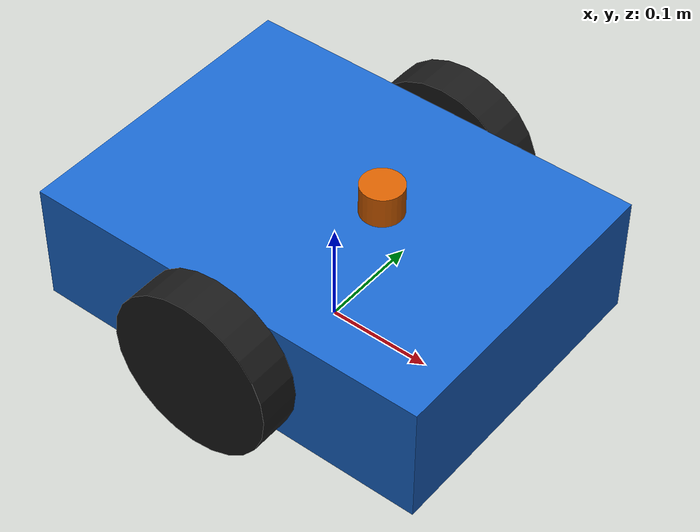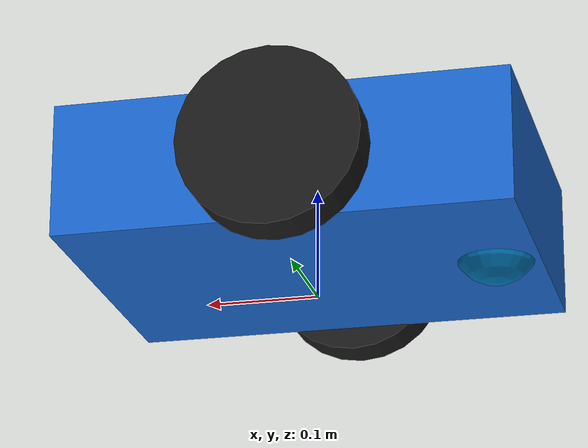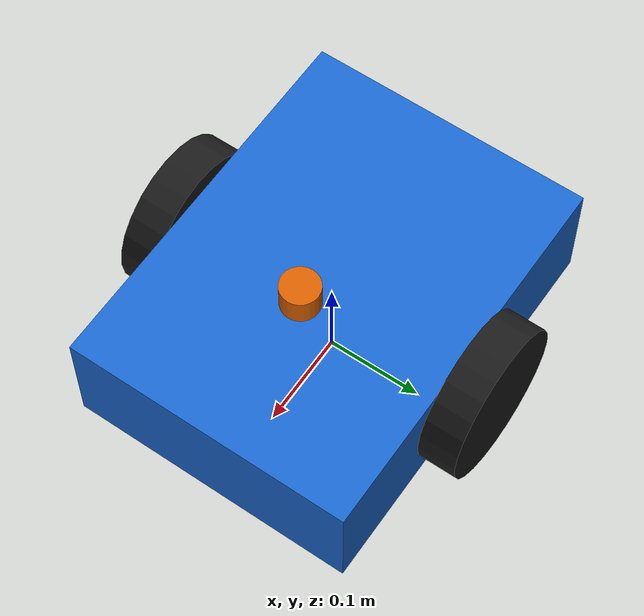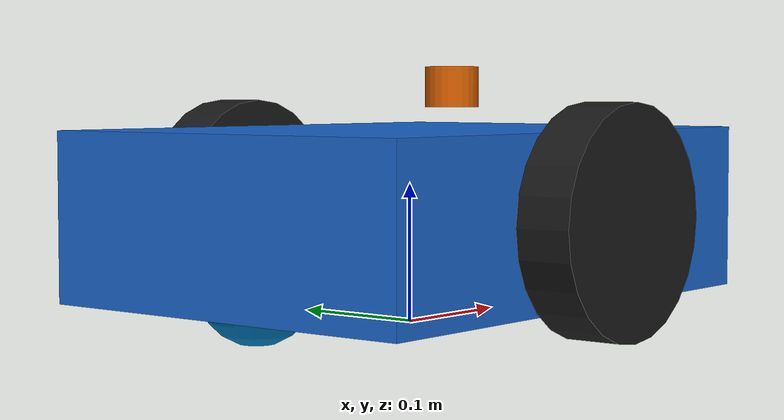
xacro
<?xml version="1.0"?>
<robot xmlns:xacro="http://www.ros.org/wiki/xacro" name="throwbot">
  <xacro:property name="wr" value="0.08"/>
  <xacro:property name="sep" value="0.34"/>

  <link name="base_footprint"/>
  <joint name="footprint_joint" type="fixed">
    <parent link="base_footprint"/><child link="base_link"/>
    <origin xyz="0 0 ${wr}"/>
  </joint>

  <link name="base_link">
    <inertial><mass value="8"/><inertia ixx="0.12" iyy="0.2" izz="0.25" ixy="0" ixz="0" iyz="0"/></inertial>
    <visual><geometry><box size="0.40 0.30 0.12"/></geometry><material name="b"><color rgba="0.1 0.4 0.8 1"/></material></visual>
    <collision><geometry><box size="0.40 0.30 0.12"/></geometry></collision>
  </link>

  <xacro:macro name="wheel" params="name y">
    <link name="${name}_wheel">
      <inertial><mass value="0.6"/><inertia ixx="0.002" iyy="0.002" izz="0.003" ixy="0" ixz="0" iyz="0"/></inertial>
      <visual><origin rpy="1.5708 0 0"/><geometry><cylinder radius="${wr}" length="0.04"/></geometry><material name="k"><color rgba="0.1 0.1 0.1 1"/></material></visual>
      <collision><origin rpy="1.5708 0 0"/><geometry><cylinder radius="${wr}" length="0.04"/></geometry></collision>
    </link>
    <joint name="${name}_wheel_joint" type="continuous">
      <parent link="base_link"/><child link="${name}_wheel"/>
      <origin xyz="0 ${y} 0"/><axis xyz="0 1 0"/>
    </joint>
  </xacro:macro>
  <xacro:wheel name="left" y="${sep/2}"/>
  <xacro:wheel name="right" y="${-sep/2}"/>

  <link name="caster">
    <inertial><mass value="0.2"/><inertia ixx="0.0002" iyy="0.0002" izz="0.0002" ixy="0" ixz="0" iyz="0"/></inertial>
    <collision><geometry><sphere radius="0.04"/></geometry></collision>
    <visual><geometry><sphere radius="0.04"/></geometry></visual>
  </link>
  <joint name="caster_joint" type="fixed">
    <parent link="base_link"/><child link="caster"/><origin xyz="-0.16 0 -0.04"/>
  </joint>
  <gazebo reference="caster">
    <collision><surface><friction><ode><mu>0</mu><mu2>0</mu2></ode></friction></surface></collision>
  </gazebo>

  <!-- Sensor under test. Chosen with xacro args (see sensor_cfg.py / config/sensors.yaml). -->
  <xacro:arg name="sensor_kind" default="scan"/>
  <xacro:arg name="rate" default="10"/>
  <xacro:arg name="noise" default="0.01"/>
  <xacro:arg name="rmin" default="0.12"/>
  <xacro:arg name="rmax" default="8.0"/>
  <xacro:arg name="mx" default="0.05"/>
  <xacro:arg name="mz" default="0.09"/>
  <xacro:arg name="samples" default="360"/>
  <xacro:arg name="amin" default="-3.14159"/>
  <xacro:arg name="amax" default="3.14159"/>
  <xacro:arg name="width" default="320"/>
  <xacro:arg name="height" default="240"/>
  <xacro:arg name="hfov" default="1.5184"/>
  <xacro:property name="kind" value="$(arg sensor_kind)"/>

  <link name="sensor_link">
    <inertial><mass value="0.1"/><inertia ixx="0.0001" iyy="0.0001" izz="0.0001" ixy="0" ixz="0" iyz="0"/></inertial>
    <visual><geometry><cylinder radius="0.02" length="0.03"/></geometry></visual>
  </link>
  <joint name="sensor_joint" type="fixed">
    <parent link="base_link"/><child link="sensor_link"/><origin xyz="$(arg mx) 0 $(arg mz)"/>
  </joint>

  <xacro:if value="${kind in ('scan', 'range')}">
  <gazebo reference="sensor_link">
    <sensor name="range_sensor" type="gpu_lidar">
      <topic>sensor/scan</topic>
      <ignition_frame_id>sensor_link</ignition_frame_id>
      <update_rate>$(arg rate)</update_rate>
      <always_on>true</always_on>
      <visualize>false</visualize>
      <lidar>
        <scan>
          <horizontal><samples>$(arg samples)</samples><resolution>1</resolution><min_angle>$(arg amin)</min_angle><max_angle>$(arg amax)</max_angle></horizontal>
          <vertical><samples>1</samples><resolution>1</resolution><min_angle>0</min_angle><max_angle>0</max_angle></vertical>
        </scan>
        <range><min>$(arg rmin)</min><max>$(arg rmax)</max><resolution>0.01</resolution></range>
        <noise><type>gaussian</type><mean>0.0</mean><stddev>$(arg noise)</stddev></noise>
      </lidar>
    </sensor>
  </gazebo>
  </xacro:if>

  <xacro:if value="${kind == 'depth'}">
  <gazebo reference="sensor_link">
    <sensor name="depth_sensor" type="depth_camera">
      <topic>sensor/depth</topic>
      <ignition_frame_id>sensor_link</ignition_frame_id>
      <update_rate>$(arg rate)</update_rate>
      <always_on>true</always_on>
      <visualize>false</visualize>
      <camera>
        <horizontal_fov>$(arg hfov)</horizontal_fov>
        <image><width>$(arg width)</width><height>$(arg height)</height></image>
        <clip><near>$(arg rmin)</near><far>$(arg rmax)</far></clip>
        <noise><type>gaussian</type><mean>0.0</mean><stddev>$(arg noise)</stddev></noise>
      </camera>
    </sensor>
  </gazebo>
  </xacro:if>

  <gazebo>
    <plugin filename="ignition-gazebo-diff-drive-system" name="ignition::gazebo::systems::DiffDrive">
      <left_joint>left_wheel_joint</left_joint>
      <right_joint>right_wheel_joint</right_joint>
      <wheel_separation>${sep}</wheel_separation>
      <wheel_radius>${wr}</wheel_radius>
      <max_linear_acceleration>1.0</max_linear_acceleration>
      <max_angular_acceleration>2.0</max_angular_acceleration>
      <topic>cmd_vel</topic>
      <!-- wheel odometry is NOT used (it drifts when the robot is blocked); it is published to unbridged topics -->
      <odom_topic>wheel_odom_unused</odom_topic>
      <frame_id>wheel_odom</frame_id>
      <child_frame_id>base_footprint</child_frame_id>
      <tf_topic>wheel_tf_unused</tf_topic>
      <odom_publish_frequency>30</odom_publish_frequency>
    </plugin>
    <!-- Odometry from the simulated model's actual world pose (independent of wheel slip): the localisation Nav2 sees -->
    <plugin filename="ignition-gazebo-odometry-publisher-system" name="ignition::gazebo::systems::OdometryPublisher">
      <odom_frame>odom</odom_frame>
      <robot_base_frame>base_footprint</robot_base_frame>
      <odom_topic>odom</odom_topic>
      <tf_topic>tf</tf_topic>
      <odom_publish_frequency>30</odom_publish_frequency>
      <dimensions>2</dimensions>
    </plugin>
    <plugin filename="ignition-gazebo-joint-state-publisher-system" name="ignition::gazebo::systems::JointStatePublisher"/>
  </gazebo>
</robot>
